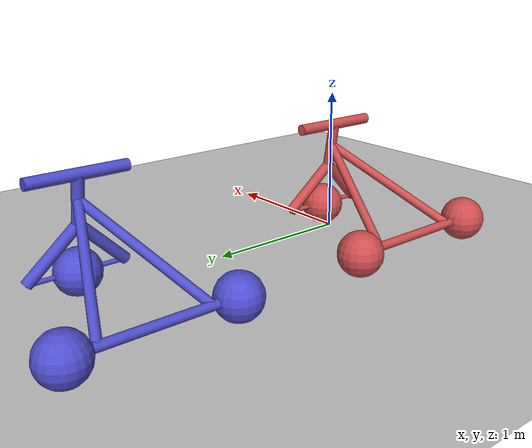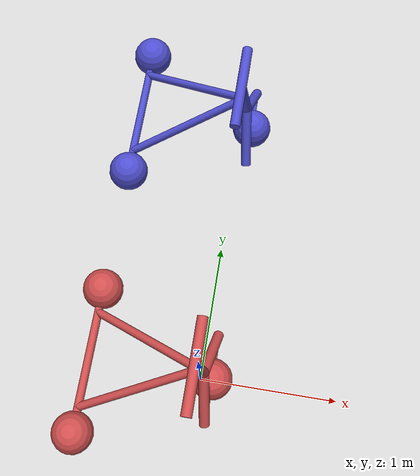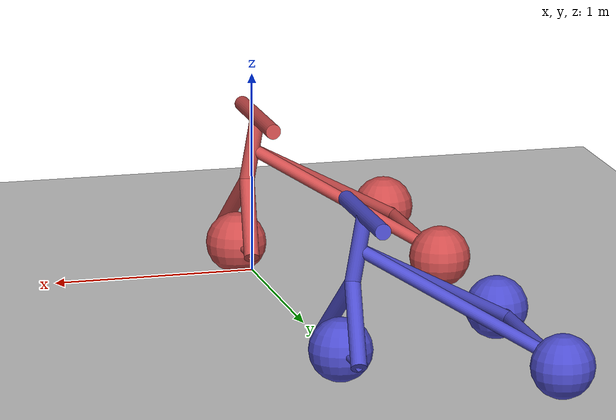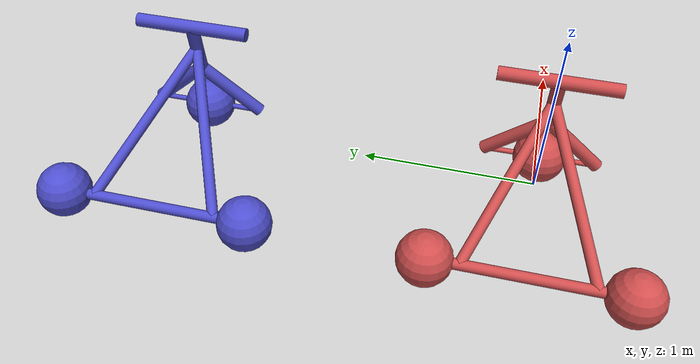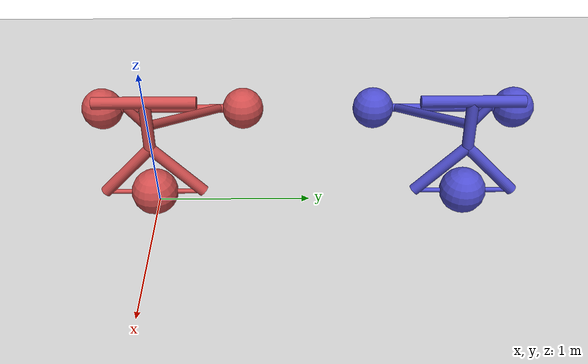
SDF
<?xml version="1.0" ?>

<sdf version="1.6">
  <world name="wheel_slip">
    <gravity>-2 0 -9.8</gravity>

    <plugin
      filename="gz-sim-physics-system"
      name="gz::sim::systems::Physics">
    </plugin>
    <plugin
      filename="gz-sim-user-commands-system"
      name="gz::sim::systems::UserCommands">
    </plugin>
    <plugin
      filename="gz-sim-scene-broadcaster-system"
      name="gz::sim::systems::SceneBroadcaster">
    </plugin>

    <model name="ground_plane">
      <static>true</static>
      <link name="link">
        <collision name="collision">
          <geometry>
            <plane>
              <normal>0 0 1</normal>
              <size>100 100</size>
            </plane>
          </geometry>
        </collision>
        <visual name="visual">
          <geometry>
            <plane>
              <normal>0 0 1</normal>
              <size>100 100</size>
            </plane>
          </geometry>
          <material>
            <ambient>0.8 0.8 0.8 1</ambient>
            <diffuse>0.8 0.8 0.8 1</diffuse>
            <specular>0.8 0.8 0.8 1</specular>
          </material>
        </visual>
      </link>
    </model>
    <light type="directional" name="sun">
      <cast_shadows>true</cast_shadows>
      <pose>0 0 10 0 0 0</pose>
      <diffuse>1 1 1 1</diffuse>
      <specular>0.5 0.5 0.5 1</specular>
      <attenuation>
        <range>1000</range>
        <constant>0.9</constant>
        <linear>0.01</linear>
        <quadratic>0.001</quadratic>
      </attenuation>
      <direction>-0.5 0.1 -0.9</direction>
    </light>
    <model name="trisphere_cycle0">
      <link name="frame">
        <pose>-0.40855911616047164 0 0.38502293110800634  0 -0.522020852957719 0</pose>
        <inertial>
          <pose>0.0 0 0  0 0 0</pose>
          <mass>10</mass>
          <inertia>
            <ixx>0.22799999999999998</ixx>
            <iyy>0.7435210984814149</iyy>
            <izz>0.9655210984814149</izz>
            <ixy>0</ixy>
            <ixz>0</ixz>
            <iyz>0</iyz>
          </inertia>
        </inertial>
        <collision name="axle_collision">
          <pose>-0.4713346258704366 0 0  1.5707963267948966 0 0</pose>
          <geometry>
            <cylinder>
              <length>1.0392304845413263</length>
              <radius>0.03</radius>
            </cylinder>
          </geometry>
        </collision>
        <visual name="axle_visual">
          <pose>-0.4713346258704366 0 0  1.5707963267948966 0 0</pose>
          <material>
            <ambient>0.8 0.3 0.3 1</ambient>
            <diffuse>0.8 0.3 0.3 1</diffuse>
            <specular>0.8 0.3 0.3 1</specular>
          </material>
          <geometry>
            <cylinder>
              <length>1.0392304845413263</length>
              <radius>0.03</radius>
            </cylinder>
          </geometry>
        </visual>
        <collision name="frame_left_collision">
          <pose>0 0.17155177419583564 0  0 1.5707963267948966 -0.3490658503988659</pose>
          <geometry>
            <cylinder>
              <length>1.0031676644991372</length>
              <radius>0.03</radius>
            </cylinder>
          </geometry>
        </collision>
        <visual name="frame_left_visual">
          <pose>0 0.17155177419583564 0  0 1.5707963267948966 -0.3490658503988659</pose>
          <material>
            <ambient>0.8 0.3 0.3 1</ambient>
            <diffuse>0.8 0.3 0.3 1</diffuse>
            <specular>0.8 0.3 0.3 1</specular>
          </material>
          <geometry>
            <cylinder>
              <length>1.0031676644991372</length>
              <radius>0.03</radius>
            </cylinder>
          </geometry>
        </visual>
        <collision name="frame_right_collision">
          <pose>0 -0.17155177419583564 0  0 1.5707963267948966 0.3490658503988659</pose>
          <geometry>
            <cylinder>
              <length>1.0031676644991372</length>
              <radius>0.03</radius>
            </cylinder>
          </geometry>
        </collision>
        <visual name="frame_right_visual">
          <pose>0 -0.17155177419583564 0  0 1.5707963267948966 0.3490658503988659</pose>
          <material>
            <ambient>0.8 0.3 0.3 1</ambient>
            <diffuse>0.8 0.3 0.3 1</diffuse>
            <specular>0.8 0.3 0.3 1</specular>
          </material>
          <geometry>
            <cylinder>
              <length>1.0031676644991372</length>
              <radius>0.03</radius>
            </cylinder>
          </geometry>
        </visual>
      </link>
      <link name="fork">
        <pose>0.04144088383952833 0 0.38502293110800634  0 -0.17453292519943295 0</pose>
        <inertial>
          <mass>3</mass>
          <inertia>
            <ixx>0.15820312499999997</ixx>
            <iyy>0.058359374999999984</iyy>
            <izz>0.10265624999999999</izz>
            <ixy>0</ixy>
            <ixz>0</ixz>
            <iyz>0</iyz>
          </inertia>
        </inertial>
        <collision name="handlebars_collision">
          <pose>0 0 0.397747564417433  1.5707963267948966 0 0</pose>
          <geometry>
            <cylinder>
              <length>0.6363961030678927</length>
              <radius>0.0375</radius>
            </cylinder>
          </geometry>
        </collision>
        <visual name="handlebars_visual">
          <pose>0 0 0.397747564417433  1.5707963267948966 0 0</pose>
          <material>
            <ambient>0.8 0.3 0.3 1</ambient>
            <diffuse>0.8 0.3 0.3 1</diffuse>
            <specular>0.8 0.3 0.3 1</specular>
          </material>
          <geometry>
            <cylinder>
              <length>0.6363961030678927</length>
              <radius>0.0375</radius>
            </cylinder>
          </geometry>
        </visual>
        <collision name="headtube_collision">
          <pose>0 0 0.2386485386504598  0 0 0</pose>
          <geometry>
            <cylinder>
              <length>0.31819805153394637</length>
              <radius>0.0375</radius>
            </cylinder>
          </geometry>
        </collision>
        <visual name="headtube_visual">
          <pose>0 0 0.2386485386504598  0 0 0</pose>
          <material>
            <ambient>0.8 0.3 0.3 1</ambient>
            <diffuse>0.8 0.3 0.3 1</diffuse>
            <specular>0.8 0.3 0.3 1</specular>
          </material>
          <geometry>
            <cylinder>
              <length>0.31819805153394637</length>
              <radius>0.0375</radius>
            </cylinder>
          </geometry>
        </visual>
        <collision name="spindle_collision">
          <pose>0 0 -0.23864853865045976  1.5707963267948966 0 0</pose>
          <geometry>
            <cylinder>
              <length>0.6363961030678927</length>
              <radius>0.015</radius>
            </cylinder>
          </geometry>
        </collision>
        <visual name="spindle_visual">
          <pose>0 0 -0.23864853865045976  1.5707963267948966 0 0</pose>
          <material>
            <ambient>0.8 0.3 0.3 1</ambient>
            <diffuse>0.8 0.3 0.3 1</diffuse>
            <specular>0.8 0.3 0.3 1</specular>
          </material>
          <geometry>
            <cylinder>
              <length>0.6363961030678927</length>
              <radius>0.015</radius>
            </cylinder>
          </geometry>
        </visual>
        <collision name="fork_left_collision">
          <pose>0 0.15909902576697318 -0.07954951288348658  0.7853981633974483 0 0</pose>
          <geometry>
            <cylinder>
              <length>0.45</length>
              <radius>0.0375</radius>
            </cylinder>
          </geometry>
        </collision>
        <visual name="fork_left_visual">
          <pose>0 0.15909902576697318 -0.07954951288348658  0.7853981633974483 0 0</pose>
          <material>
            <ambient>0.8 0.3 0.3 1</ambient>
            <diffuse>0.8 0.3 0.3 1</diffuse>
            <specular>0.8 0.3 0.3 1</specular>
          </material>
          <geometry>
            <cylinder>
              <length>0.45</length>
              <radius>0.0375</radius>
            </cylinder>
          </geometry>
        </visual>
        <collision name="fork_right_collision">
          <pose>0 -0.15909902576697318 -0.07954951288348658  -0.7853981633974483 0 0</pose>
          <geometry>
            <cylinder>
              <length>0.45</length>
              <radius>0.0375</radius>
            </cylinder>
          </geometry>
        </collision>
        <visual name="fork_right_visual">
          <pose>0 -0.15909902576697318 -0.07954951288348658  -0.7853981633974483 0 0</pose>
          <material>
            <ambient>0.8 0.3 0.3 1</ambient>
            <diffuse>0.8 0.3 0.3 1</diffuse>
            <specular>0.8 0.3 0.3 1</specular>
          </material>
          <geometry>
            <cylinder>
              <length>0.45</length>
              <radius>0.0375</radius>
            </cylinder>
          </geometry>
        </visual>
      </link>
      <link name="wheel_front">
        <pose>0.08288176767905665 0 0.15  0 0 0</pose>
          <material>
            <ambient>0.8 0.3 0.3 1</ambient>
            <diffuse>0.8 0.3 0.3 1</diffuse>
            <specular>0.8 0.3 0.3 1</specular>
          </material>
        <inertial>
          <mass>0.5</mass>
          <inertia>
            <ixx>0.0045</ixx>
            <iyy>0.0045</iyy>
            <izz>0.0045</izz>
            <ixy>0</ixy>
            <ixz>0</ixz>
            <iyz>0</iyz>
          </inertia>
        </inertial>
        <collision name="collision">
          <geometry>
            <sphere>
              <radius>0.15</radius>
            </sphere>
          </geometry>
          <surface>
            <contact>
              <ode>
                <kp>100000000.0</kp>
                <kd>1</kd>
                <min_depth>0.0005</min_depth>
              </ode>
            </contact>
          </surface>
        </collision>
        <visual name="visual">
          <material>
            <ambient>0.8 0.3 0.3 1</ambient>
            <diffuse>0.8 0.3 0.3 1</diffuse>
            <specular>0.8 0.3 0.3 1</specular>
          </material>
          <geometry>
            <sphere>
              <radius>0.15</radius>
            </sphere>
          </geometry>
        </visual>
      </link>
      <joint name="wheel_front_steer" type="revolute">
        <parent>frame</parent>
        <child>fork</child>
        <axis>
          <xyz>0 0 1</xyz>
          <limit>
            <lower>-0.9599310885968813</lower>
            <upper>0.9599310885968813</upper>
          </limit>
        </axis>
      </joint>
      <joint name="wheel_front_spin" type="revolute">
        <parent>fork</parent>
        <child>wheel_front</child>
        <axis>
          <xyz>0 1 0</xyz>
        </axis>
      </joint>
      <link name="wheel_rear_left">
        <pose>-0.8171182323209433 0.5196152422706631 0.15  0 0 0</pose>
        <inertial>
          <mass>0.5</mass>
          <inertia>
            <ixx>0.0045</ixx>
            <iyy>0.0045</iyy>
            <izz>0.0045</izz>
            <ixy>0</ixy>
            <ixz>0</ixz>
            <iyz>0</iyz>
          </inertia>
        </inertial>
        <collision name="collision">
          <geometry>
            <sphere>
              <radius>0.15</radius>
            </sphere>
          </geometry>
          <surface>
            <contact>
              <ode>
                <kp>100000000.0</kp>
                <kd>1</kd>
                <min_depth>0.0005</min_depth>
              </ode>
            </contact>
          </surface>
        </collision>
        <visual name="visual">
          <material>
            <ambient>0.8 0.3 0.3 1</ambient>
            <diffuse>0.8 0.3 0.3 1</diffuse>
            <specular>0.8 0.3 0.3 1</specular>
          </material>
          <geometry>
            <sphere>
              <radius>0.15</radius>
            </sphere>
          </geometry>
        </visual>
      </link>
      <joint name="wheel_rear_left_spin" type="revolute">
        <parent>frame</parent>
        <child>wheel_rear_left</child>
        <axis>
          <xyz>0 1 0</xyz>
        </axis>
      </joint>
      <link name="wheel_rear_right">
        <pose>-0.8171182323209433 -0.5196152422706631 0.15  0 0 0</pose>
        <inertial>
          <mass>0.5</mass>
          <inertia>
            <ixx>0.0045</ixx>
            <iyy>0.0045</iyy>
            <izz>0.0045</izz>
            <ixy>0</ixy>
            <ixz>0</ixz>
            <iyz>0</iyz>
          </inertia>
        </inertial>
        <collision name="collision">
          <geometry>
            <sphere>
              <radius>0.15</radius>
            </sphere>
          </geometry>
          <surface>
            <contact>
              <ode>
                <kp>100000000.0</kp>
                <kd>1</kd>
                <min_depth>0.0005</min_depth>
              </ode>
            </contact>
          </surface>
        </collision>
        <visual name="visual">
          <material>
            <ambient>0.8 0.3 0.3 1</ambient>
            <diffuse>0.8 0.3 0.3 1</diffuse>
            <specular>0.8 0.3 0.3 1</specular>
          </material>
          <geometry>
            <sphere>
              <radius>0.15</radius>
            </sphere>
          </geometry>
        </visual>
      </link>
      <joint name="wheel_rear_right_spin" type="revolute">
        <parent>frame</parent>
        <child>wheel_rear_right</child>
        <axis>
          <xyz>0 1 0</xyz>
        </axis>
      </joint>

      <plugin
        filename="gz-sim-wheel-slip-system"
        name="gz::sim::systems::WheelSlip">
        <wheel link_name="wheel_front">
          <wheel_radius>0.15</wheel_radius>
          <slip_compliance_lateral>0</slip_compliance_lateral>
          <slip_compliance_longitudinal>0</slip_compliance_longitudinal>
          <wheel_normal_force>77</wheel_normal_force>
        </wheel>
        <wheel link_name="wheel_rear_left">
          <wheel_radius>0.15</wheel_radius>
          <slip_compliance_lateral>0</slip_compliance_lateral>
          <slip_compliance_longitudinal>0</slip_compliance_longitudinal>
          <wheel_normal_force>32</wheel_normal_force>
        </wheel>
        <wheel link_name="wheel_rear_right">
          <wheel_radius>0.15</wheel_radius>
          <slip_compliance_lateral>0</slip_compliance_lateral>
          <slip_compliance_longitudinal>0</slip_compliance_longitudinal>
          <wheel_normal_force>32</wheel_normal_force>
        </wheel>
      </plugin>
    </model>
    <model name="trisphere_cycle1">
      <pose>0 2 0  0 0 0</pose>
      <link name="frame">
        <pose>-0.40855911616047164 0 0.38502293110800634  0 -0.522020852957719 0</pose>
        <inertial>
          <pose>0.0 0 0  0 0 0</pose>
          <mass>10</mass>
          <inertia>
            <ixx>0.22799999999999998</ixx>
            <iyy>0.7435210984814149</iyy>
            <izz>0.9655210984814149</izz>
            <ixy>0</ixy>
            <ixz>0</ixz>
            <iyz>0</iyz>
          </inertia>
        </inertial>
        <collision name="axle_collision">
          <pose>-0.4713346258704366 0 0  1.5707963267948966 0 0</pose>
          <geometry>
            <cylinder>
              <length>1.0392304845413263</length>
              <radius>0.03</radius>
            </cylinder>
          </geometry>
        </collision>
        <visual name="axle_visual">
          <pose>-0.4713346258704366 0 0  1.5707963267948966 0 0</pose>
          <material>
            <ambient>0.3 0.3 0.8 1</ambient>
            <diffuse>0.3 0.3 0.8 1</diffuse>
            <specular>0.3 0.3 0.8 1</specular>
          </material>
          <geometry>
            <cylinder>
              <length>1.0392304845413263</length>
              <radius>0.03</radius>
            </cylinder>
          </geometry>
        </visual>
        <collision name="frame_left_collision">
          <pose>0 0.17155177419583564 0  0 1.5707963267948966 -0.3490658503988659</pose>
          <geometry>
            <cylinder>
              <length>1.0031676644991372</length>
              <radius>0.03</radius>
            </cylinder>
          </geometry>
        </collision>
        <visual name="frame_left_visual">
          <material>
            <ambient>0.3 0.3 0.8 1</ambient>
            <diffuse>0.3 0.3 0.8 1</diffuse>
            <specular>0.3 0.3 0.8 1</specular>
          </material>
          <pose>0 0.17155177419583564 0  0 1.5707963267948966 -0.3490658503988659</pose>
          <geometry>
            <cylinder>
              <length>1.0031676644991372</length>
              <radius>0.03</radius>
            </cylinder>
          </geometry>
        </visual>
        <collision name="frame_right_collision">
          <pose>0 -0.17155177419583564 0  0 1.5707963267948966 0.3490658503988659</pose>
          <geometry>
            <cylinder>
              <length>1.0031676644991372</length>
              <radius>0.03</radius>
            </cylinder>
          </geometry>
        </collision>
        <visual name="frame_right_visual">
          <pose>0 -0.17155177419583564 0  0 1.5707963267948966 0.3490658503988659</pose>
          <material>
            <ambient>0.3 0.3 0.8 1</ambient>
            <diffuse>0.3 0.3 0.8 1</diffuse>
            <specular>0.3 0.3 0.8 1</specular>
          </material>
          <geometry>
            <cylinder>
              <length>1.0031676644991372</length>
              <radius>0.03</radius>
            </cylinder>
          </geometry>
        </visual>
      </link>
      <link name="fork">
        <pose>0.04144088383952833 0 0.38502293110800634  0 -0.17453292519943295 0</pose>
        <inertial>
          <mass>3</mass>
          <inertia>
            <ixx>0.15820312499999997</ixx>
            <iyy>0.058359374999999984</iyy>
            <izz>0.10265624999999999</izz>
            <ixy>0</ixy>
            <ixz>0</ixz>
            <iyz>0</iyz>
          </inertia>
        </inertial>
        <collision name="handlebars_collision">
          <pose>0 0 0.397747564417433  1.5707963267948966 0 0</pose>
          <geometry>
            <cylinder>
              <length>0.6363961030678927</length>
              <radius>0.0375</radius>
            </cylinder>
          </geometry>
        </collision>
        <visual name="handlebars_visual">
          <pose>0 0 0.397747564417433  1.5707963267948966 0 0</pose>
          <material>
            <ambient>0.3 0.3 0.8 1</ambient>
            <diffuse>0.3 0.3 0.8 1</diffuse>
            <specular>0.3 0.3 0.8 1</specular>
          </material>
          <geometry>
            <cylinder>
              <length>0.6363961030678927</length>
              <radius>0.0375</radius>
            </cylinder>
          </geometry>
        </visual>
        <collision name="headtube_collision">
          <pose>0 0 0.2386485386504598  0 0 0</pose>
          <geometry>
            <cylinder>
              <length>0.31819805153394637</length>
              <radius>0.0375</radius>
            </cylinder>
          </geometry>
        </collision>
        <visual name="headtube_visual">
          <pose>0 0 0.2386485386504598  0 0 0</pose>
          <material>
            <ambient>0.3 0.3 0.8 1</ambient>
            <diffuse>0.3 0.3 0.8 1</diffuse>
            <specular>0.3 0.3 0.8 1</specular>
          </material>
          <geometry>
            <cylinder>
              <length>0.31819805153394637</length>
              <radius>0.0375</radius>
            </cylinder>
          </geometry>
        </visual>
        <collision name="spindle_collision">
          <pose>0 0 -0.23864853865045976  1.5707963267948966 0 0</pose>
          <geometry>
            <cylinder>
              <length>0.6363961030678927</length>
              <radius>0.015</radius>
            </cylinder>
          </geometry>
        </collision>
        <visual name="spindle_visual">
          <pose>0 0 -0.23864853865045976  1.5707963267948966 0 0</pose>
          <material>
            <ambient>0.3 0.3 0.8 1</ambient>
            <diffuse>0.3 0.3 0.8 1</diffuse>
            <specular>0.3 0.3 0.8 1</specular>
          </material>
          <geometry>
            <cylinder>
              <length>0.6363961030678927</length>
              <radius>0.015</radius>
            </cylinder>
          </geometry>
        </visual>
        <collision name="fork_left_collision">
          <pose>0 0.15909902576697318 -0.07954951288348658  0.7853981633974483 0 0</pose>
          <geometry>
            <cylinder>
              <length>0.45</length>
              <radius>0.0375</radius>
            </cylinder>
          </geometry>
        </collision>
        <visual name="fork_left_visual">
          <pose>0 0.15909902576697318 -0.07954951288348658  0.7853981633974483 0 0</pose>
          <material>
            <ambient>0.3 0.3 0.8 1</ambient>
            <diffuse>0.3 0.3 0.8 1</diffuse>
            <specular>0.3 0.3 0.8 1</specular>
          </material>
          <geometry>
            <cylinder>
              <length>0.45</length>
              <radius>0.0375</radius>
            </cylinder>
          </geometry>
        </visual>
        <collision name="fork_right_collision">
          <pose>0 -0.15909902576697318 -0.07954951288348658  -0.7853981633974483 0 0</pose>
          <geometry>
            <cylinder>
              <length>0.45</length>
              <radius>0.0375</radius>
            </cylinder>
          </geometry>
        </collision>
        <visual name="fork_right_visual">
          <pose>0 -0.15909902576697318 -0.07954951288348658  -0.7853981633974483 0 0</pose>
          <material>
            <ambient>0.3 0.3 0.8 1</ambient>
            <diffuse>0.3 0.3 0.8 1</diffuse>
            <specular>0.3 0.3 0.8 1</specular>
          </material>
          <geometry>
            <cylinder>
              <length>0.45</length>
              <radius>0.0375</radius>
            </cylinder>
          </geometry>
        </visual>
      </link>
      <link name="wheel_front">
        <pose>0.08288176767905665 0 0.15  0 0 0</pose>
        <inertial>
          <mass>0.5</mass>
          <inertia>
            <ixx>0.0045</ixx>
            <iyy>0.0045</iyy>
            <izz>0.0045</izz>
            <ixy>0</ixy>
            <ixz>0</ixz>
            <iyz>0</iyz>
          </inertia>
        </inertial>
        <collision name="collision">
          <geometry>
            <sphere>
              <radius>0.15</radius>
            </sphere>
          </geometry>
          <surface>
            <contact>
              <ode>
                <kp>100000000.0</kp>
                <kd>1</kd>
                <min_depth>0.0005</min_depth>
              </ode>
            </contact>
          </surface>
        </collision>
        <visual name="visual">
          <material>
            <ambient>0.3 0.3 0.8 1</ambient>
            <diffuse>0.3 0.3 0.8 1</diffuse>
            <specular>0.3 0.3 0.8 1</specular>
          </material>
          <geometry>
            <sphere>
              <radius>0.15</radius>
            </sphere>
          </geometry>
        </visual>
      </link>
      <joint name="wheel_front_steer" type="revolute">
        <parent>frame</parent>
        <child>fork</child>
        <axis>
          <xyz>0 0 1</xyz>
          <limit>
            <lower>-0.9599310885968813</lower>
            <upper>0.9599310885968813</upper>
          </limit>
        </axis>
      </joint>
      <joint name="wheel_front_spin" type="revolute">
        <parent>fork</parent>
        <child>wheel_front</child>
        <axis>
          <xyz>0 1 0</xyz>
        </axis>
      </joint>
      <link name="wheel_rear_left">
        <pose>-0.8171182323209433 0.5196152422706631 0.15  0 0 0</pose>
        <inertial>
          <mass>0.5</mass>
          <inertia>
            <ixx>0.0045</ixx>
            <iyy>0.0045</iyy>
            <izz>0.0045</izz>
            <ixy>0</ixy>
            <ixz>0</ixz>
            <iyz>0</iyz>
          </inertia>
        </inertial>
        <collision name="collision">
          <geometry>
            <sphere>
              <radius>0.15</radius>
            </sphere>
          </geometry>
          <surface>
            <contact>
              <ode>
                <kp>100000000.0</kp>
                <kd>1</kd>
                <min_depth>0.0005</min_depth>
              </ode>
            </contact>
          </surface>
        </collision>
        <visual name="visual">
          <material>
            <ambient>0.3 0.3 0.8 1</ambient>
            <diffuse>0.3 0.3 0.8 1</diffuse>
            <specular>0.3 0.3 0.8 1</specular>
          </material>
          <geometry>
            <sphere>
              <radius>0.15</radius>
            </sphere>
          </geometry>
        </visual>
      </link>
      <joint name="wheel_rear_left_spin" type="revolute">
        <parent>frame</parent>
        <child>wheel_rear_left</child>
        <axis>
          <xyz>0 1 0</xyz>
        </axis>
      </joint>
      <link name="wheel_rear_right">
        <pose>-0.8171182323209433 -0.5196152422706631 0.15  0 0 0</pose>
        <inertial>
          <mass>0.5</mass>
          <inertia>
            <ixx>0.0045</ixx>
            <iyy>0.0045</iyy>
            <izz>0.0045</izz>
            <ixy>0</ixy>
            <ixz>0</ixz>
            <iyz>0</iyz>
          </inertia>
        </inertial>
        <collision name="collision">
          <geometry>
            <sphere>
              <radius>0.15</radius>
            </sphere>
          </geometry>
          <surface>
            <contact>
              <ode>
                <kp>100000000.0</kp>
                <kd>1</kd>
                <min_depth>0.0005</min_depth>
              </ode>
            </contact>
          </surface>
        </collision>
        <visual name="visual">
          <material>
            <ambient>0.3 0.3 0.8 1</ambient>
            <diffuse>0.3 0.3 0.8 1</diffuse>
            <specular>0.3 0.3 0.8 1</specular>
          </material>
          <geometry>
            <sphere>
              <radius>0.15</radius>
            </sphere>
          </geometry>
        </visual>
      </link>
      <joint name="wheel_rear_right_spin" type="revolute">
        <parent>frame</parent>
        <child>wheel_rear_right</child>
        <axis>
          <xyz>0 1 0</xyz>
        </axis>
      </joint>

      <plugin
        filename="gz-sim-wheel-slip-system"
        name="gz::sim::systems::WheelSlip">
        <wheel link_name="wheel_front">
          <slip_compliance_lateral>1</slip_compliance_lateral>
          <slip_compliance_longitudinal>1</slip_compliance_longitudinal>
          <wheel_normal_force>77</wheel_normal_force>
          <wheel_radius>0.15</wheel_radius>
        </wheel>
        <wheel link_name="wheel_rear_left">
          <slip_compliance_lateral>1</slip_compliance_lateral>
          <slip_compliance_longitudinal>1</slip_compliance_longitudinal>
          <wheel_normal_force>32</wheel_normal_force>
          <wheel_radius>0.15</wheel_radius>
        </wheel>
        <wheel link_name="wheel_rear_right">
          <slip_compliance_lateral>1</slip_compliance_lateral>
          <slip_compliance_longitudinal>1</slip_compliance_longitudinal>
          <wheel_normal_force>32</wheel_normal_force>
          <wheel_radius>0.15</wheel_radius>
        </wheel>
      </plugin>
    </model>

  </world>
</sdf>
